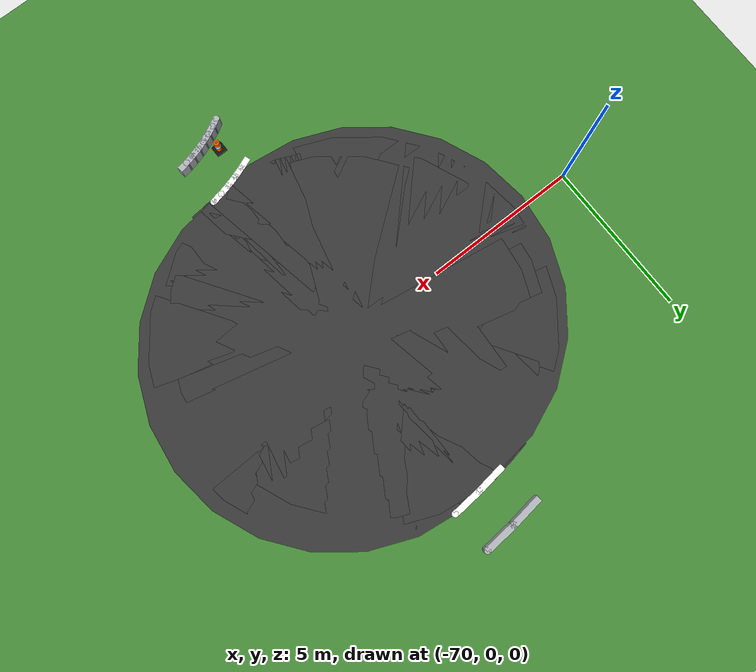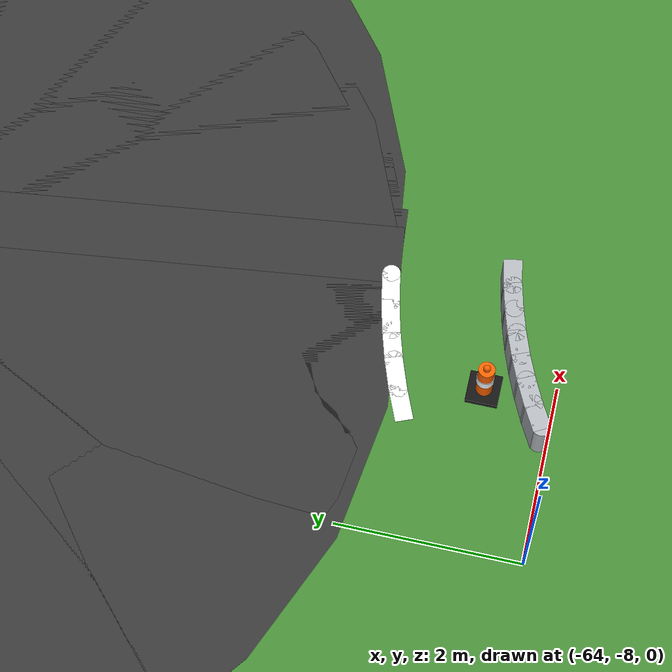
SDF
<sdf version="1.6">
 <world name="sem_silesia_ring_2026">
  <model name="ground_plane">
   <static>true</static>
   <link name="link">
    <collision name="collision">
     <geometry><plane><normal>0 0 1</normal><size>600 600</size></plane></geometry>
     <surface><friction><ode><mu>0.6</mu><mu2>0.6</mu2></ode></friction></surface>
    </collision>
    <visual name="visual">
     <geometry><plane><normal>0 0 1</normal><size>600 600</size></plane></geometry>
     <material><ambient>0.28 0.55 0.22 1</ambient><diffuse>0.28 0.55 0.22 1</diffuse></material>
    </visual>
   </link>
  </model>
  <model name="road_L_s2">
   <static>true</static>
   <pose>-61.0894 -0.0476 0.0030 0 0 3.2289</pose>
   <link name="link">
    <visual name="v">
     <geometry><box><size>0.6957 12.0000 0.0060</size></box></geometry>
     <material><ambient>0.22 0.22 0.22 1</ambient><diffuse>0.22 0.22 0.22 1</diffuse></material>
    </visual>
    <collision name="c">
     <geometry><box><size>0.6957 12.0000 0.0060</size></box></geometry>
     <surface><friction><ode><mu>0.9</mu><mu2>0.9</mu2></ode></friction></surface>
    </collision>
   </link>
  </model>
  <model name="road_L_jnt3">
   <static>true</static>
   <pose>-61.3066 -0.0685 0.0030 0 0 0</pose>
   <link name="link">
    <visual name="v">
     <geometry><cylinder><radius>6.0000</radius><length>0.0060</length></cylinder></geometry>
     <material><ambient>0.22 0.22 0.22 1</ambient><diffuse>0.22 0.22 0.22 1</diffuse></material>
    </visual>
    <collision name="c">
     <geometry><cylinder><radius>6.0000</radius><length>0.0060</length></cylinder></geometry>
     <surface><friction><ode><mu>0.9</mu><mu2>0.9</mu2></ode></friction></surface>
    </collision>
   </link>
  </model>
  <model name="road_L_s3">
   <static>true</static>
   <pose>-61.5234 -0.0932 0.0030 0 0 3.2638</pose>
   <link name="link">
    <visual name="v">
     <geometry><box><size>0.6957 12.0000 0.0060</size></box></geometry>
     <material><ambient>0.22 0.22 0.22 1</ambient><diffuse>0.22 0.22 0.22 1</diffuse></material>
    </visual>
    <collision name="c">
     <geometry><box><size>0.6957 12.0000 0.0060</size></box></geometry>
     <surface><friction><ode><mu>0.9</mu><mu2>0.9</mu2></ode></friction></surface>
    </collision>
   </link>
  </model>
  <model name="road_L_jnt4">
   <static>true</static>
   <pose>-61.7397 -0.1216 0.0030 0 0 0</pose>
   <link name="link">
    <visual name="v">
     <geometry><cylinder><radius>6.0000</radius><length>0.0060</length></cylinder></geometry>
     <material><ambient>0.22 0.22 0.22 1</ambient><diffuse>0.22 0.22 0.22 1</diffuse></material>
    </visual>
    <collision name="c">
     <geometry><cylinder><radius>6.0000</radius><length>0.0060</length></cylinder></geometry>
     <surface><friction><ode><mu>0.9</mu><mu2>0.9</mu2></ode></friction></surface>
    </collision>
   </link>
  </model>
  <model name="road_L_s4">
   <static>true</static>
   <pose>-61.9554 -0.1539 0.0030 0 0 3.2987</pose>
   <link name="link">
    <visual name="v">
     <geometry><box><size>0.6957 12.0000 0.0060</size></box></geometry>
     <material><ambient>0.22 0.22 0.22 1</ambient><diffuse>0.22 0.22 0.22 1</diffuse></material>
    </visual>
    <collision name="c">
     <geometry><box><size>0.6957 12.0000 0.0060</size></box></geometry>
     <surface><friction><ode><mu>0.9</mu><mu2>0.9</mu2></ode></friction></surface>
    </collision>
   </link>
  </model>
  <model name="road_L_jnt5">
   <static>true</static>
   <pose>-62.1706 -0.1899 0.0030 0 0 0</pose>
   <link name="link">
    <visual name="v">
     <geometry><cylinder><radius>6.0000</radius><length>0.0060</length></cylinder></geometry>
     <material><ambient>0.22 0.22 0.22 1</ambient><diffuse>0.22 0.22 0.22 1</diffuse></material>
    </visual>
    <collision name="c">
     <geometry><cylinder><radius>6.0000</radius><length>0.0060</length></cylinder></geometry>
     <surface><friction><ode><mu>0.9</mu><mu2>0.9</mu2></ode></friction></surface>
    </collision>
   </link>
  </model>
  <model name="road_L_s5">
   <static>true</static>
   <pose>-62.3851 -0.2297 0.0030 0 0 3.3336</pose>
   <link name="link">
    <visual name="v">
     <geometry><box><size>0.6957 12.0000 0.0060</size></box></geometry>
     <material><ambient>0.22 0.22 0.22 1</ambient><diffuse>0.22 0.22 0.22 1</diffuse></material>
    </visual>
    <collision name="c">
     <geometry><box><size>0.6957 12.0000 0.0060</size></box></geometry>
     <surface><friction><ode><mu>0.9</mu><mu2>0.9</mu2></ode></friction></surface>
    </collision>
   </link>
  </model>
  <model name="road_L_jnt6">
   <static>true</static>
   <pose>-62.5989 -0.2732 0.0030 0 0 0</pose>
   <link name="link">
    <visual name="v">
     <geometry><cylinder><radius>6.0000</radius><length>0.0060</length></cylinder></geometry>
     <material><ambient>0.22 0.22 0.22 1</ambient><diffuse>0.22 0.22 0.22 1</diffuse></material>
    </visual>
    <collision name="c">
     <geometry><cylinder><radius>6.0000</radius><length>0.0060</length></cylinder></geometry>
     <surface><friction><ode><mu>0.9</mu><mu2>0.9</mu2></ode></friction></surface>
    </collision>
   </link>
  </model>
  <model name="wl_Lo_jnt1">
   <static>true</static>
   <pose>-60.9630 5.8748 0.0050 0 0 0</pose>
   <link name="link">
    <visual name="v">
     <geometry><cylinder><radius>0.1000</radius><length>0.0040</length></cylinder></geometry>
     <material><ambient>1 1 1 1</ambient><diffuse>1 1 1 1</diffuse></material>
    </visual>
    <collision name="c">
     <geometry><cylinder><radius>0.1000</radius><length>0.0040</length></cylinder></geometry>
     <surface><friction><ode><mu>0.9</mu><mu2>0.9</mu2></ode></friction></surface>
    </collision>
   </link>
  </model>
  <model name="wl_Lo_s1">
   <static>true</static>
   <pose>-61.4436 5.8433 0.0050 0 0 3.2201</pose>
   <link name="link">
    <visual name="v">
     <geometry><box><size>1.0185 0.2000 0.0040</size></box></geometry>
     <material><ambient>1 1 1 1</ambient><diffuse>1 1 1 1</diffuse></material>
    </visual>
    <collision name="c">
     <geometry><box><size>1.0185 0.2000 0.0040</size></box></geometry>
     <surface><friction><ode><mu>0.9</mu><mu2>0.9</mu2></ode></friction></surface>
    </collision>
   </link>
  </model>
  <model name="wl_Lo_jnt2">
   <static>true</static>
   <pose>-61.9233 5.7992 0.0050 0 0 0</pose>
   <link name="link">
    <visual name="v">
     <geometry><cylinder><radius>0.1000</radius><length>0.0040</length></cylinder></geometry>
     <material><ambient>1 1 1 1</ambient><diffuse>1 1 1 1</diffuse></material>
    </visual>
    <collision name="c">
     <geometry><cylinder><radius>0.1000</radius><length>0.0040</length></cylinder></geometry>
     <surface><friction><ode><mu>0.9</mu><mu2>0.9</mu2></ode></friction></surface>
    </collision>
   </link>
  </model>
  <model name="wl_Lo_s2">
   <static>true</static>
   <pose>-62.4017 5.7426 0.0050 0 0 3.2725</pose>
   <link name="link">
    <visual name="v">
     <geometry><box><size>1.0185 0.2000 0.0040</size></box></geometry>
     <material><ambient>1 1 1 1</ambient><diffuse>1 1 1 1</diffuse></material>
    </visual>
    <collision name="c">
     <geometry><box><size>1.0185 0.2000 0.0040</size></box></geometry>
     <surface><friction><ode><mu>0.9</mu><mu2>0.9</mu2></ode></friction></surface>
    </collision>
   </link>
  </model>
  <model name="wl_Li_jnt3">
   <static>true</static>
   <pose>-61.0325 -5.9813 0.0050 0 0 0</pose>
   <link name="link">
    <visual name="v">
     <geometry><cylinder><radius>0.1000</radius><length>0.0040</length></cylinder></geometry>
     <material><ambient>1 1 1 1</ambient><diffuse>1 1 1 1</diffuse></material>
    </visual>
    <collision name="c">
     <geometry><cylinder><radius>0.1000</radius><length>0.0040</length></cylinder></geometry>
     <surface><friction><ode><mu>0.9</mu><mu2>0.9</mu2></ode></friction></surface>
    </collision>
   </link>
  </model>
  <model name="wl_Li_s3">
   <static>true</static>
   <pose>-61.2028 -6.0105 0.0050 0 0 3.3249</pose>
   <link name="link">
    <visual name="v">
     <geometry><box><size>0.4008 0.2000 0.0040</size></box></geometry>
     <material><ambient>1 1 1 1</ambient><diffuse>1 1 1 1</diffuse></material>
    </visual>
    <collision name="c">
     <geometry><box><size>0.4008 0.2000 0.0040</size></box></geometry>
     <surface><friction><ode><mu>0.9</mu><mu2>0.9</mu2></ode></friction></surface>
    </collision>
   </link>
  </model>
  <model name="wl_Li_jnt4">
   <static>true</static>
   <pose>-61.3722 -6.0442 0.0050 0 0 0</pose>
   <link name="link">
    <visual name="v">
     <geometry><cylinder><radius>0.1000</radius><length>0.0040</length></cylinder></geometry>
     <material><ambient>1 1 1 1</ambient><diffuse>1 1 1 1</diffuse></material>
    </visual>
    <collision name="c">
     <geometry><cylinder><radius>0.1000</radius><length>0.0040</length></cylinder></geometry>
     <surface><friction><ode><mu>0.9</mu><mu2>0.9</mu2></ode></friction></surface>
    </collision>
   </link>
  </model>
  <model name="wl_Li_s4">
   <static>true</static>
   <pose>-61.5407 -6.0824 0.0050 0 0 3.3772</pose>
   <link name="link">
    <visual name="v">
     <geometry><box><size>0.4008 0.2000 0.0040</size></box></geometry>
     <material><ambient>1 1 1 1</ambient><diffuse>1 1 1 1</diffuse></material>
    </visual>
    <collision name="c">
     <geometry><box><size>0.4008 0.2000 0.0040</size></box></geometry>
     <surface><friction><ode><mu>0.9</mu><mu2>0.9</mu2></ode></friction></surface>
    </collision>
   </link>
  </model>
  <model name="wl_Li_jnt5">
   <static>true</static>
   <pose>-61.7082 -6.1249 0.0050 0 0 0</pose>
   <link name="link">
    <visual name="v">
     <geometry><cylinder><radius>0.1000</radius><length>0.0040</length></cylinder></geometry>
     <material><ambient>1 1 1 1</ambient><diffuse>1 1 1 1</diffuse></material>
    </visual>
    <collision name="c">
     <geometry><cylinder><radius>0.1000</radius><length>0.0040</length></cylinder></geometry>
     <surface><friction><ode><mu>0.9</mu><mu2>0.9</mu2></ode></friction></surface>
    </collision>
   </link>
  </model>
  <model name="wl_Li_s5">
   <static>true</static>
   <pose>-61.8745 -6.1718 0.0050 0 0 3.4296</pose>
   <link name="link">
    <visual name="v">
     <geometry><box><size>0.4008 0.2000 0.0040</size></box></geometry>
     <material><ambient>1 1 1 1</ambient><diffuse>1 1 1 1</diffuse></material>
    </visual>
    <collision name="c">
     <geometry><box><size>0.4008 0.2000 0.0040</size></box></geometry>
     <surface><friction><ode><mu>0.9</mu><mu2>0.9</mu2></ode></friction></surface>
    </collision>
   </link>
  </model>
  <model name="wl_Li_jnt6">
   <static>true</static>
   <pose>-62.0395 -6.2230 0.0050 0 0 0</pose>
   <link name="link">
    <visual name="v">
     <geometry><cylinder><radius>0.1000</radius><length>0.0040</length></cylinder></geometry>
     <material><ambient>1 1 1 1</ambient><diffuse>1 1 1 1</diffuse></material>
    </visual>
    <collision name="c">
     <geometry><cylinder><radius>0.1000</radius><length>0.0040</length></cylinder></geometry>
     <surface><friction><ode><mu>0.9</mu><mu2>0.9</mu2></ode></friction></surface>
    </collision>
   </link>
  </model>
  <model name="wl_Li_s6">
   <static>true</static>
   <pose>-62.2031 -6.2786 0.0050 0 0 3.4819</pose>
   <link name="link">
    <visual name="v">
     <geometry><box><size>0.4008 0.2000 0.0040</size></box></geometry>
     <material><ambient>1 1 1 1</ambient><diffuse>1 1 1 1</diffuse></material>
    </visual>
    <collision name="c">
     <geometry><box><size>0.4008 0.2000 0.0040</size></box></geometry>
     <surface><friction><ode><mu>0.9</mu><mu2>0.9</mu2></ode></friction></surface>
    </collision>
   </link>
  </model>
  <model name="wl_Li_jnt7">
   <static>true</static>
   <pose>-62.3652 -6.3384 0.0050 0 0 0</pose>
   <link name="link">
    <visual name="v">
     <geometry><cylinder><radius>0.1000</radius><length>0.0040</length></cylinder></geometry>
     <material><ambient>1 1 1 1</ambient><diffuse>1 1 1 1</diffuse></material>
    </visual>
    <collision name="c">
     <geometry><cylinder><radius>0.1000</radius><length>0.0040</length></cylinder></geometry>
     <surface><friction><ode><mu>0.9</mu><mu2>0.9</mu2></ode></friction></surface>
    </collision>
   </link>
  </model>
  <model name="wl_Li_s7">
   <static>true</static>
   <pose>-62.5257 -6.4024 0.0050 0 0 3.5343</pose>
   <link name="link">
    <visual name="v">
     <geometry><box><size>0.4008 0.2000 0.0040</size></box></geometry>
     <material><ambient>1 1 1 1</ambient><diffuse>1 1 1 1</diffuse></material>
    </visual>
    <collision name="c">
     <geometry><box><size>0.4008 0.2000 0.0040</size></box></geometry>
     <surface><friction><ode><mu>0.9</mu><mu2>0.9</mu2></ode></friction></surface>
    </collision>
   </link>
  </model>
  <model name="arm_Lo_jnt1">
   <static>true</static>
   <pose>-61.0310 7.1730 0.2250 0 0 0</pose>
   <link name="link">
    <visual name="v">
     <geometry><cylinder><radius>0.1000</radius><length>0.4500</length></cylinder></geometry>
     <material><ambient>0.70 0.72 0.74 1</ambient><diffuse>0.70 0.72 0.74 1</diffuse></material>
    </visual>
    <collision name="c">
     <geometry><cylinder><radius>0.1000</radius><length>0.4500</length></cylinder></geometry>
     <surface><friction><ode><mu>0.9</mu><mu2>0.9</mu2></ode></friction></surface>
    </collision>
   </link>
  </model>
  <model name="arm_Lo_s1">
   <static>true</static>
   <pose>-61.5456 7.1393 0.2250 0 0 3.2201</pose>
   <link name="link">
    <visual name="v">
     <geometry><box><size>1.0866 0.2000 0.4500</size></box></geometry>
     <material><ambient>0.70 0.72 0.74 1</ambient><diffuse>0.70 0.72 0.74 1</diffuse></material>
    </visual>
    <collision name="c">
     <geometry><box><size>1.0866 0.2000 0.4500</size></box></geometry>
     <surface><friction><ode><mu>0.9</mu><mu2>0.9</mu2></ode></friction></surface>
    </collision>
   </link>
  </model>
  <model name="arm_Lo_jnt2">
   <static>true</static>
   <pose>-62.0592 7.0921 0.2250 0 0 0</pose>
   <link name="link">
    <visual name="v">
     <geometry><cylinder><radius>0.1000</radius><length>0.4500</length></cylinder></geometry>
     <material><ambient>0.70 0.72 0.74 1</ambient><diffuse>0.70 0.72 0.74 1</diffuse></material>
    </visual>
    <collision name="c">
     <geometry><cylinder><radius>0.1000</radius><length>0.4500</length></cylinder></geometry>
     <surface><friction><ode><mu>0.9</mu><mu2>0.9</mu2></ode></friction></surface>
    </collision>
   </link>
  </model>
  <model name="arm_Lo_s2">
   <static>true</static>
   <pose>-62.5714 7.0315 0.2250 0 0 3.2725</pose>
   <link name="link">
    <visual name="v">
     <geometry><box><size>1.0866 0.2000 0.4500</size></box></geometry>
     <material><ambient>0.70 0.72 0.74 1</ambient><diffuse>0.70 0.72 0.74 1</diffuse></material>
    </visual>
    <collision name="c">
     <geometry><box><size>1.0866 0.2000 0.4500</size></box></geometry>
     <surface><friction><ode><mu>0.9</mu><mu2>0.9</mu2></ode></friction></surface>
    </collision>
   </link>
  </model>
  <model name="arm_Li_s3">
   <static>true</static>
   <pose>-60.9658 -7.2887 0.2250 0 0 3.3249</pose>
   <link name="link">
    <visual name="v">
     <geometry><box><size>0.3327 0.2000 0.4500</size></box></geometry>
     <material><ambient>0.70 0.72 0.74 1</ambient><diffuse>0.70 0.72 0.74 1</diffuse></material>
    </visual>
    <collision name="c">
     <geometry><box><size>0.3327 0.2000 0.4500</size></box></geometry>
     <surface><friction><ode><mu>0.9</mu><mu2>0.9</mu2></ode></friction></surface>
    </collision>
   </link>
  </model>
  <model name="arm_Li_jnt4">
   <static>true</static>
   <pose>-61.1019 -7.3158 0.2250 0 0 0</pose>
   <link name="link">
    <visual name="v">
     <geometry><cylinder><radius>0.1000</radius><length>0.4500</length></cylinder></geometry>
     <material><ambient>0.70 0.72 0.74 1</ambient><diffuse>0.70 0.72 0.74 1</diffuse></material>
    </visual>
    <collision name="c">
     <geometry><cylinder><radius>0.1000</radius><length>0.4500</length></cylinder></geometry>
     <surface><friction><ode><mu>0.9</mu><mu2>0.9</mu2></ode></friction></surface>
    </collision>
   </link>
  </model>
  <model name="arm_Li_s4">
   <static>true</static>
   <pose>-61.2373 -7.3464 0.2250 0 0 3.3772</pose>
   <link name="link">
    <visual name="v">
     <geometry><box><size>0.3327 0.2000 0.4500</size></box></geometry>
     <material><ambient>0.70 0.72 0.74 1</ambient><diffuse>0.70 0.72 0.74 1</diffuse></material>
    </visual>
    <collision name="c">
     <geometry><box><size>0.3327 0.2000 0.4500</size></box></geometry>
     <surface><friction><ode><mu>0.9</mu><mu2>0.9</mu2></ode></friction></surface>
    </collision>
   </link>
  </model>
  <model name="arm_Li_jnt5">
   <static>true</static>
   <pose>-61.3717 -7.3806 0.2250 0 0 0</pose>
   <link name="link">
    <visual name="v">
     <geometry><cylinder><radius>0.1000</radius><length>0.4500</length></cylinder></geometry>
     <material><ambient>0.70 0.72 0.74 1</ambient><diffuse>0.70 0.72 0.74 1</diffuse></material>
    </visual>
    <collision name="c">
     <geometry><cylinder><radius>0.1000</radius><length>0.4500</length></cylinder></geometry>
     <surface><friction><ode><mu>0.9</mu><mu2>0.9</mu2></ode></friction></surface>
    </collision>
   </link>
  </model>
  <model name="arm_Li_s5">
   <static>true</static>
   <pose>-61.5053 -7.4183 0.2250 0 0 3.4296</pose>
   <link name="link">
    <visual name="v">
     <geometry><box><size>0.3327 0.2000 0.4500</size></box></geometry>
     <material><ambient>0.70 0.72 0.74 1</ambient><diffuse>0.70 0.72 0.74 1</diffuse></material>
    </visual>
    <collision name="c">
     <geometry><box><size>0.3327 0.2000 0.4500</size></box></geometry>
     <surface><friction><ode><mu>0.9</mu><mu2>0.9</mu2></ode></friction></surface>
    </collision>
   </link>
  </model>
  <model name="arm_Li_jnt6">
   <static>true</static>
   <pose>-61.6378 -7.4594 0.2250 0 0 0</pose>
   <link name="link">
    <visual name="v">
     <geometry><cylinder><radius>0.1000</radius><length>0.4500</length></cylinder></geometry>
     <material><ambient>0.70 0.72 0.74 1</ambient><diffuse>0.70 0.72 0.74 1</diffuse></material>
    </visual>
    <collision name="c">
     <geometry><cylinder><radius>0.1000</radius><length>0.4500</length></cylinder></geometry>
     <surface><friction><ode><mu>0.9</mu><mu2>0.9</mu2></ode></friction></surface>
    </collision>
   </link>
  </model>
  <model name="arm_Li_s6">
   <static>true</static>
   <pose>-61.7692 -7.5040 0.2250 0 0 3.4819</pose>
   <link name="link">
    <visual name="v">
     <geometry><box><size>0.3327 0.2000 0.4500</size></box></geometry>
     <material><ambient>0.70 0.72 0.74 1</ambient><diffuse>0.70 0.72 0.74 1</diffuse></material>
    </visual>
    <collision name="c">
     <geometry><box><size>0.3327 0.2000 0.4500</size></box></geometry>
     <surface><friction><ode><mu>0.9</mu><mu2>0.9</mu2></ode></friction></surface>
    </collision>
   </link>
  </model>
  <model name="arm_Li_jnt7">
   <static>true</static>
   <pose>-61.8994 -7.5520 0.2250 0 0 0</pose>
   <link name="link">
    <visual name="v">
     <geometry><cylinder><radius>0.1000</radius><length>0.4500</length></cylinder></geometry>
     <material><ambient>0.70 0.72 0.74 1</ambient><diffuse>0.70 0.72 0.74 1</diffuse></material>
    </visual>
    <collision name="c">
     <geometry><cylinder><radius>0.1000</radius><length>0.4500</length></cylinder></geometry>
     <surface><friction><ode><mu>0.9</mu><mu2>0.9</mu2></ode></friction></surface>
    </collision>
   </link>
  </model>
  <model name="arm_Li_s7">
   <static>true</static>
   <pose>-62.0282 -7.6034 0.2250 0 0 3.5343</pose>
   <link name="link">
    <visual name="v">
     <geometry><box><size>0.3327 0.2000 0.4500</size></box></geometry>
     <material><ambient>0.70 0.72 0.74 1</ambient><diffuse>0.70 0.72 0.74 1</diffuse></material>
    </visual>
    <collision name="c">
     <geometry><box><size>0.3327 0.2000 0.4500</size></box></geometry>
     <surface><friction><ode><mu>0.9</mu><mu2>0.9</mu2></ode></friction></surface>
    </collision>
   </link>
  </model>
  <model name="arm_Li_jnt8">
   <static>true</static>
   <pose>-62.1557 -7.6582 0.2250 0 0 0</pose>
   <link name="link">
    <visual name="v">
     <geometry><cylinder><radius>0.1000</radius><length>0.4500</length></cylinder></geometry>
     <material><ambient>0.70 0.72 0.74 1</ambient><diffuse>0.70 0.72 0.74 1</diffuse></material>
    </visual>
    <collision name="c">
     <geometry><cylinder><radius>0.1000</radius><length>0.4500</length></cylinder></geometry>
     <surface><friction><ode><mu>0.9</mu><mu2>0.9</mu2></ode></friction></surface>
    </collision>
   </link>
  </model>
  <model name="arm_Li_s8">
   <static>true</static>
   <pose>-62.2817 -7.7163 0.2250 0 0 3.5867</pose>
   <link name="link">
    <visual name="v">
     <geometry><box><size>0.3327 0.2000 0.4500</size></box></geometry>
     <material><ambient>0.70 0.72 0.74 1</ambient><diffuse>0.70 0.72 0.74 1</diffuse></material>
    </visual>
    <collision name="c">
     <geometry><box><size>0.3327 0.2000 0.4500</size></box></geometry>
     <surface><friction><ode><mu>0.9</mu><mu2>0.9</mu2></ode></friction></surface>
    </collision>
   </link>
  </model>
  <model name="arm_Li_jnt9">
   <static>true</static>
   <pose>-62.4061 -7.7777 0.2250 0 0 0</pose>
   <link name="link">
    <visual name="v">
     <geometry><cylinder><radius>0.1000</radius><length>0.4500</length></cylinder></geometry>
     <material><ambient>0.70 0.72 0.74 1</ambient><diffuse>0.70 0.72 0.74 1</diffuse></material>
    </visual>
    <collision name="c">
     <geometry><cylinder><radius>0.1000</radius><length>0.4500</length></cylinder></geometry>
     <surface><friction><ode><mu>0.9</mu><mu2>0.9</mu2></ode></friction></surface>
    </collision>
   </link>
  </model>
  <model name="arm_Li_s9">
   <static>true</static>
   <pose>-62.5289 -7.8423 0.2250 0 0 3.6390</pose>
   <link name="link">
    <visual name="v">
     <geometry><box><size>0.3327 0.2000 0.4500</size></box></geometry>
     <material><ambient>0.70 0.72 0.74 1</ambient><diffuse>0.70 0.72 0.74 1</diffuse></material>
    </visual>
    <collision name="c">
     <geometry><box><size>0.3327 0.2000 0.4500</size></box></geometry>
     <surface><friction><ode><mu>0.9</mu><mu2>0.9</mu2></ode></friction></surface>
    </collision>
   </link>
  </model>
  <model name="arm_Li_jnt10">
   <static>true</static>
   <pose>-62.6500 -7.9101 0.2250 0 0 0</pose>
   <link name="link">
    <visual name="v">
     <geometry><cylinder><radius>0.1000</radius><length>0.4500</length></cylinder></geometry>
     <material><ambient>0.70 0.72 0.74 1</ambient><diffuse>0.70 0.72 0.74 1</diffuse></material>
    </visual>
    <collision name="c">
     <geometry><cylinder><radius>0.1000</radius><length>0.4500</length></cylinder></geometry>
     <surface><friction><ode><mu>0.9</mu><mu2>0.9</mu2></ode></friction></surface>
    </collision>
   </link>
  </model>
  <model name="cn_Li_1">
   <static>true</static>
   <pose>-62.1813 -7.2339 0 0 0 0</pose>
   <link name="link">
    <visual name="base">
     <pose>0 0 0.03 0 0 0</pose>
     <geometry><box><size>0.35 0.35 0.06</size></box></geometry>
     <material><ambient>0.08 0.08 0.08 1</ambient><diffuse>0.08 0.08 0.08 1</diffuse></material>
    </visual>
    <visual name="body">
     <pose>0 0 0.30 0 0 0</pose>
     <geometry><cylinder><radius>0.09</radius><length>0.50</length></cylinder></geometry>
     <material><ambient>1.0 0.38 0.0 1</ambient><diffuse>1.0 0.38 0.0 1</diffuse></material>
    </visual>
    <visual name="stripe">
     <pose>0 0 0.32 0 0 0</pose>
     <geometry><cylinder><radius>0.095</radius><length>0.12</length></cylinder></geometry>
     <material><ambient>1 1 1 1</ambient><diffuse>1 1 1 1</diffuse></material>
    </visual>
    <visual name="tip">
     <pose>0 0 0.57 0 0 0</pose>
     <geometry><sphere><radius>0.04</radius></sphere></geometry>
     <material><ambient>1.0 0.38 0.0 1</ambient><diffuse>1.0 0.38 0.0 1</diffuse></material>
    </visual>
    <collision name="c">
     <pose>0 0 0.28 0 0 0</pose>
     <geometry><cylinder><radius>0.09</radius><length>0.56</length></cylinder></geometry>
    </collision>
   </link>
  </model>
 </world>
</sdf>
